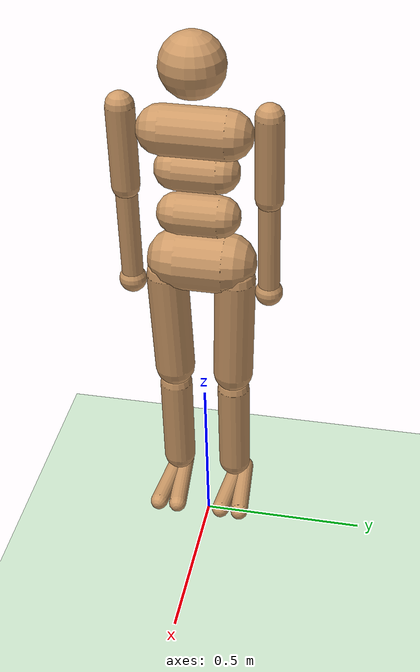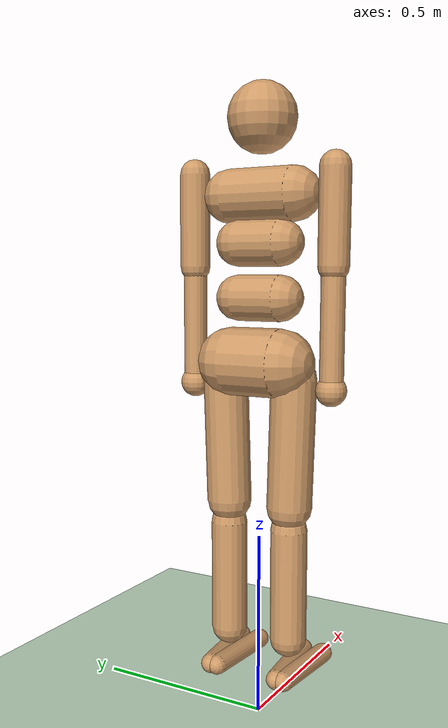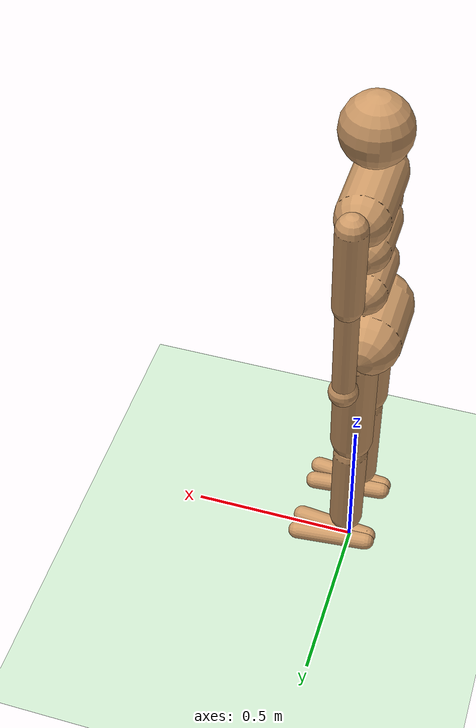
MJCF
<mujoco model='humanoid'>
  <compiler inertiafromgeom='true' angle='degree' />
  <custom>
    <numeric name="frame_skip" data="4" />
  </custom>
  <default>
    <joint limited='true' damping='1' armature='1' />
    <geom contype='1' conaffinity='1' condim='1' rgba='0.8 0.6 .4 1' margin="0.001" solref=".02 1" solimp=".8 .8 .01" material="geom" />
    <position ctrllimited='true' kp='1' gear='1'/>
  </default>
  <option integrator="RK4" iterations="50" solver="PGS" timestep="0.003">
  </option>
  <size nuser_geom='1' nkey='5' />
  <visual>
    <map fogstart="3" fogend="5" />
  </visual>
  <asset>
    <texture type="skybox" builtin="gradient" width="100" height="100" rgb1="1 1 1" rgb2="0 0 0" />
    <texture name="texgeom" type="cube" builtin="flat" mark="cross" width="127" height="1278" rgb1="0.8 0.6 0.4" rgb2="0.8 0.6 0.4" markrgb="1 1 1" random="0.01" />
    <texture name="texplane" type="2d" builtin="checker" rgb1="0 0 0" rgb2="0.8 0.8 0.8" width="100" height="100" />
    <material name='MatPlane' texture="texplane" shininess="1" texrepeat="60 60" specular="1"  reflectance="0.5" />
    <material name='geom' texture="texgeom" texuniform="true" />
  </asset>
  <worldbody>
    <light cutoff="100" diffuse="1 1 1" dir="-0 0 -1.3" directional="true" exponent="1" pos="0 0 1.3" specular=".1 .1 .1"/>
    <geom condim="3" friction="1 .1 .1" material="MatPlane" name="floor" pos="0 0 0" rgba="0.8 0.9 0.8 1" size="20 20 0.125" type="plane"/>
    <body name='torso' pos='0 0 1.4'>
      <camera name="track" mode="trackcom" pos="0 -4 0" xyaxes="1 0 0 0 0 1"/>
      <joint name='root' type='free' pos='0 0 0' limited='false' damping='0' armature='0' stiffness='0' />
      <geom name='torso1' type='capsule' fromto='0 -.09 0 0 .09 0' size='0.07' />
      <geom name='head' type='sphere' pos='0 0 .19' size='.09' user='258' />
      <geom name='uwaist' type='capsule' fromto='-.01 -.06 -.12 -.01 .06 -.12' size='0.06' />
      <body name='lwaist' pos='-.01 0 -0.260' quat='1.000 0 -0.002 0'>
        <geom name='lwaist' type='capsule' fromto='0 -.06 0 0 .06 0' size='0.06' />
        <joint name='abdomen_z' type='hinge' pos='0 0 0.065' axis='0 0 1' range='-45 45' damping='5' stiffness='20' armature='0.02' />
        <joint name='abdomen_y' type='hinge' pos='0 0 0.065' axis='0 1 0' range='-75 30' damping='5' stiffness='10' armature='0.02' />
        <body name='pelvis' pos='0 0 -0.165' quat='1.000 0 -0.002 0'>
          <joint name='abdomen_x' type='hinge' pos='0 0 0.1' axis='1 0 0' range='-35 35' damping='5' stiffness='10' armature='0.02' />
          <geom name='butt' type='capsule' fromto='-.02 -.07 0 -.02 .07 0' size='0.09' />
          <body name='right_thigh' pos='0 -0.1 -0.04'>
            <joint name='right_hip_x' type='hinge' pos='0 0 0' axis='1 0 0' range='-25 5' damping='5' stiffness='10' armature='0.01' />
            <joint name='right_hip_z' type='hinge' pos='0 0 0' axis='0 0 1' range='-60 35' damping='5' stiffness='10' armature='0.01' />
            <joint name='right_hip_y' type='hinge' pos='0 0 0' axis='0 1 0' range='-110 20' damping='5' stiffness='20' armature='0.0080' />
            <geom name='right_thigh1' type='capsule' fromto='0 0 0 0 0.01 -.34' size='0.06' />
            <body name='right_shin' pos='0 0.01 -0.403'>
              <joint name='right_knee' type='hinge' pos='0 0 .02' axis='0 -1 0' range='-160 -2' armature='0.0060' />
              <geom name='right_shin1' type='capsule' fromto='0 0 0 0 0 -.3' size='0.049' />
              <body name='right_foot' pos='0 0 -.39'>
                <joint name='right_ankle_y' type='hinge' pos='0 0 0.08' axis='0 1 0' range='-50 50' stiffness='4' armature='0.0008' />
                <joint name='right_ankle_x' type='hinge' pos='0 0 0.04' axis='1 0 0.5' range='-50 50' stiffness='1' armature='0.0006' />
                <geom name='right_foot_cap1' type='capsule' fromto='-.07 -0.02 0 0.14 -0.04 0' size='0.027' />
                <geom name='right_foot_cap2' type='capsule' fromto='-.07 0 0 0.14 0.02 0' size='0.027' />
              </body>
            </body>
          </body>
          <body name='left_thigh' pos='0 0.1 -0.04'>
            <joint name='left_hip_x' type='hinge' pos='0 0 0' axis='-1 0 0' range='-25 5' damping='5' stiffness='10' armature='0.01' />
            <joint name='left_hip_z' type='hinge' pos='0 0 0' axis='0 0 -1' range='-60 35' damping='5' stiffness='10' armature='0.01' />
            <joint name='left_hip_y' type='hinge' pos='0 0 0' axis='0 1 0' range='-120 20' damping='5' stiffness='20' armature='0.01' />
            <geom name='left_thigh1' type='capsule' fromto='0 0 0 0 -0.01 -.34' size='0.06' />
            <body name='left_shin' pos='0 -0.01 -0.403'>
              <joint name='left_knee' type='hinge' pos='0 0 .02' axis='0 -1 0' range='-160 -2' stiffness='1' armature='0.0060' />
              <geom name='left_shin1' type='capsule' fromto='0 0 0 0 0 -.3' size='0.049' />
              <body name='left_foot' pos='0 0 -.39'>
                <joint name='left_ankle_y' type='hinge' pos='0 0 0.08' axis='0 1 0' range='-50 50' stiffness='4' armature='0.0008' />
                <joint name='left_ankle_x' type='hinge' pos='0 0 0.04' axis='1 0 0.5' range='-50 50' stiffness='1' armature='0.0006' />
                <geom name='left_foot_cap1' type='capsule' fromto='-.07 0.02 0 0.14 0.04 0' size='0.027' />
                <geom name='left_foot_cap2' type='capsule' fromto='-.07 0 0 0.14 -0.02 0' size='0.027' />
              </body>
            </body>
          </body>
        </body>
      </body>
      <body name='right_upper_arm' pos='0 -0.2 0.06'>
        <joint name='right_shoulder1' type='hinge' pos='0 0 0' axis='1 0 0' range='-85 60' stiffness='1' armature='0.0068' />
        <joint name='right_shoulder2' type='hinge' pos='0 0 0' axis='0 1 0' range='-85 60' stiffness='1' armature='0.0051' />
        <geom name='right_uarm1' type='capsule' fromto='0 0 0 0 0 -.24' size='0.04' />
        <body name='right_lower_arm' pos='0 0 -.24'>
          <joint name='right_elbow' type='hinge' pos='0 0 0' axis='0 0 -1' range='-50 90' stiffness='0' armature='0.0028' />
          <geom name='right_larm' type='capsule' fromto='0 0 0 0 0 -.31' size='0.031' />
          <geom name='right_hand' type='sphere' pos='0 0 -.31' size='0.04' />
          <camera pos="0 0 0" />
        </body>
      </body>
      <body name='left_upper_arm' pos='0 0.2 0.06'>
        <joint name='left_shoulder1' type='hinge' pos='0 0 0' axis='1 0 0' range='-60 85' stiffness='1' armature='0.0068' />
        <joint name='left_shoulder2' type='hinge' pos='0 0 0' axis='0 1 0' range='-60 85' stiffness='1' armature='0.0051' />
        <geom name='left_uarm1' type='capsule' fromto='0 0 0 0 0 -.24' size='0.04' />
        <body name='left_lower_arm' pos='0 0 -.24'>
          <joint name='left_elbow' type='hinge' pos='0 0 0' axis='0 0 -1' range='-50 90' stiffness='0' armature='0.0028' />
          <geom name='left_larm' type='capsule' fromto='0 0 0 0 0 -.31' size='0.031' />
          <geom name='left_hand' type='sphere' pos='0 0 -.31' size='0.04' />
        </body>
      </body>
    </body>
  </worldbody>
  <tendon>
    <fixed name='left_hipknee'>
      <joint joint='left_hip_y' coef='-1' />
      <joint joint='left_knee' coef='1' />
    </fixed>
    <fixed name='right_hipknee'>
      <joint joint='right_hip_y' coef='-1' />
      <joint joint='right_knee' coef='1' />
    </fixed>
  </tendon>

  <actuator>
    <position name='abdomen_z' joint='abdomen_z' ctrlrange='-45 45' />
    <position name='abdomen_y' joint='abdomen_y' ctrlrange='-75 30' />
    <position name='abdomen_x' joint='abdomen_x' ctrlrange='-35 35' />
    <position name='right_hip_x' joint='right_hip_x' ctrlrange='-25 5' />
    <position name='right_hip_z' joint='right_hip_z' ctrlrange='-60 35' />
    <position name='right_hip_y' joint='right_hip_y' ctrlrange='-110 20' />
    <position name='right_knee' joint='right_knee' ctrlrange='-160 -2' />
    <position name='right_ankle_y' joint='right_ankle_y' ctrlrange='-50 50' />
    <position name='right_ankle_x' joint='right_ankle_x' ctrlrange='-50 50' />
    <position name='left_hip_x' joint='left_hip_x' ctrlrange='-25 5' />
    <position name='left_hip_z' joint='left_hip_z' ctrlrange='-60 35' />
    <position name='left_hip_y' joint='left_hip_y' ctrlrange='-120 20' />
    <position name='left_knee' joint='left_knee' ctrlrange='-160 -2' />
    <position name='left_ankle_y' joint='left_ankle_y' ctrlrange='-50 50' />
    <position name='left_ankle_x' joint='left_ankle_x' ctrlrange='-50 50' />
    <position name='right_shoulder1' joint='right_shoulder1' ctrlrange='-85 60' />
    <position name='right_shoulder2' joint='right_shoulder2' ctrlrange='-85 60' />
    <position name='right_elbow' joint='right_elbow' ctrlrange='-50 90' />
    <position name='left_shoulder1' joint='left_shoulder1' ctrlrange='-60 85' />
    <position name='left_shoulder2' joint='left_shoulder2' ctrlrange='-60 85' />
    <position name='left_elbow' joint='left_elbow' ctrlrange='-50 90' />
  </actuator>
</mujoco>
